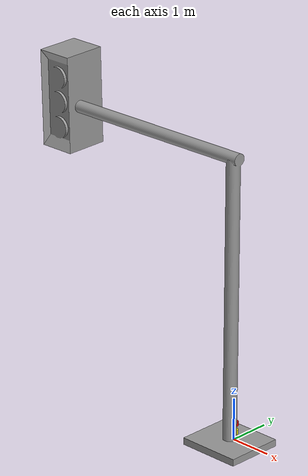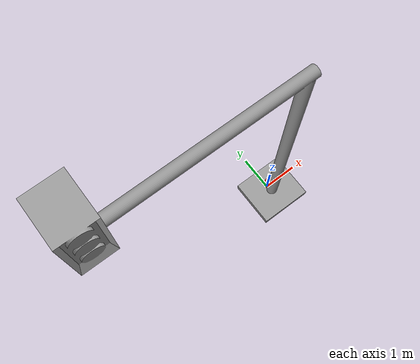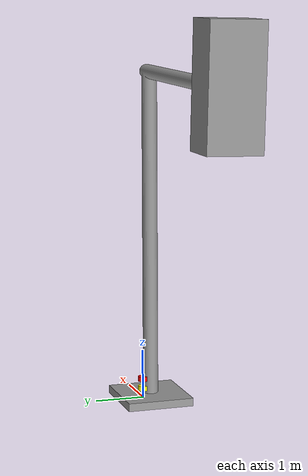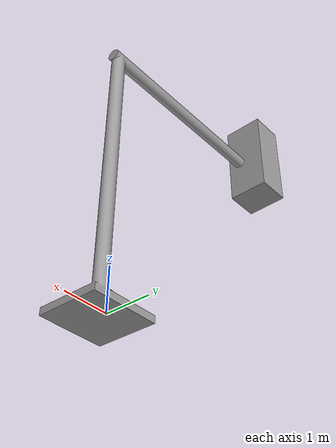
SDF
<?xml version='1.0'?>
<sdf version='1.7'>
  <model name='trafficLight'>
    <link name='link_3'>
      <inertial>
        <mass>1</mass>
        <inertia>
          <ixx>0.166667</ixx>
          <ixy>0</ixy>
          <ixz>0</ixz>
          <iyy>0.166667</iyy>
          <iyz>0</iyz>
          <izz>0.166667</izz>
        </inertia>
      </inertial>
      <pose>0.036159 -0.173654 -0.062466 1.56838 -0 0</pose>
      <visual name='visual'>
        <pose>0 0 0 0 -0 0</pose>
        <geometry>
          <mesh>
            <uri>model://traffic_light_parts/meshes/lightStand.obj</uri>
            <scale>0.75 0.75 0.75</scale>
          </mesh>
        </geometry>
        <material>
          <lighting>1</lighting>
          <script>
            <uri>file://media/materials/scripts/gazebo.material</uri>
            <name>Gazebo/Grey</name>
          </script>
          <shader type='pixel'/>
          <emissive>0 0 0 1</emissive>
        </material>
        <transparency>0</transparency>
        <cast_shadows>1</cast_shadows>
      </visual>
      <collision name='collision'>
        <laser_retro>0</laser_retro>
        <max_contacts>10</max_contacts>
        <pose>0 0 0 0 -0 0</pose>
        <geometry>
          <mesh>
            <uri>model://traffic_light_parts/meshes/lightStand.obj</uri>
            <scale>0.75 0.75 0.75</scale>
          </mesh>
        </geometry>
        <surface>
          <friction>
            <ode>
              <mu>1</mu>
              <mu2>1</mu2>
              <fdir1>0 0 0</fdir1>
              <slip1>0</slip1>
              <slip2>0</slip2>
            </ode>
            <torsional>
              <coefficient>1</coefficient>
              <patch_radius>0</patch_radius>
              <surface_radius>0</surface_radius>
              <use_patch_radius>1</use_patch_radius>
              <ode>
                <slip>0</slip>
              </ode>
            </torsional>
          </friction>
          <bounce>
            <restitution_coefficient>0</restitution_coefficient>
            <threshold>1e+06</threshold>
          </bounce>
          <contact>
            <collide_without_contact>0</collide_without_contact>
            <collide_without_contact_bitmask>1</collide_without_contact_bitmask>
            <collide_bitmask>1</collide_bitmask>
            <ode>
              <soft_cfm>0</soft_cfm>
              <soft_erp>0.2</soft_erp>
              <kp>1e+13</kp>
              <kd>1</kd>
              <max_vel>0.01</max_vel>
              <min_depth>0</min_depth>
            </ode>
            <bullet>
              <split_impulse>1</split_impulse>
              <split_impulse_penetration_threshold>-0.01</split_impulse_penetration_threshold>
              <soft_cfm>0</soft_cfm>
              <soft_erp>0.2</soft_erp>
              <kp>1e+13</kp>
              <kd>1</kd>
            </bullet>
          </contact>
        </surface>
      </collision>
    </link>
    <link name='link_4'>
      <inertial>
        <mass>1</mass>
        <inertia>
          <ixx>0.166667</ixx>
          <ixy>0</ixy>
          <ixz>0</ixz>
          <iyy>0.166667</iyy>
          <iyz>0</iyz>
          <izz>0.166667</izz>
        </inertia>
      </inertial>
      <pose>-0.03616 0.173654 0.062465 1.59454 -0 0</pose>
      <visual name='visual'>
        <pose>0 0 0 0 -0 0</pose>
        <geometry>
          <mesh>
            <uri>model://traffic_light_parts/meshes/lightBox.obj</uri>
            <scale>0.75 0.75 0.75</scale>
          </mesh>
        </geometry>
        <material>
          <lighting>1</lighting>
          <script>
            <uri>file://media/materials/scripts/gazebo.material</uri>
            <name>Gazebo/Grey</name>
          </script>
          <shader type='pixel'/>
          <emissive>0 0 0 1</emissive>
        </material>
        <transparency>0</transparency>
        <cast_shadows>1</cast_shadows>
      </visual>
      <collision name='collision'>
        <laser_retro>0</laser_retro>
        <max_contacts>10</max_contacts>
        <pose>0 0 0 0 -0 0</pose>
        <geometry>
          <mesh>
            <uri>model://traffic_light_parts/meshes/lightBox.obj</uri>
            <scale>0.75 0.75 0.75</scale>
          </mesh>
        </geometry>
        <surface>
          <friction>
            <ode>
              <mu>1</mu>
              <mu2>1</mu2>
              <fdir1>0 0 0</fdir1>
              <slip1>0</slip1>
              <slip2>0</slip2>
            </ode>
            <torsional>
              <coefficient>1</coefficient>
              <patch_radius>0</patch_radius>
              <surface_radius>0</surface_radius>
              <use_patch_radius>1</use_patch_radius>
              <ode>
                <slip>0</slip>
              </ode>
            </torsional>
          </friction>
          <bounce>
            <restitution_coefficient>0</restitution_coefficient>
            <threshold>1e+06</threshold>
          </bounce>
          <contact>
            <collide_without_contact>0</collide_without_contact>
            <collide_without_contact_bitmask>1</collide_without_contact_bitmask>
            <collide_bitmask>1</collide_bitmask>
            <ode>
              <soft_cfm>0</soft_cfm>
              <soft_erp>0.2</soft_erp>
              <kp>1e+13</kp>
              <kd>1</kd>
              <max_vel>0.01</max_vel>
              <min_depth>0</min_depth>
            </ode>
            <bullet>
              <split_impulse>1</split_impulse>
              <split_impulse_penetration_threshold>-0.01</split_impulse_penetration_threshold>
              <soft_cfm>0</soft_cfm>
              <soft_erp>0.2</soft_erp>
              <kp>1e+13</kp>
              <kd>1</kd>
            </bullet>
          </contact>
        </surface>
      </collision>
    </link>
    <joint name='link_3_JOINT_1' type='fixed'>
      <parent>link_3</parent>
      <child>link_4</child>
      <pose>0 0 0 0 -0 0</pose>
      <physics>
        <ode>
          <limit>
            <cfm>0</cfm>
            <erp>0.2</erp>
          </limit>
          <suspension>
            <cfm>0</cfm>
            <erp>0.2</erp>
          </suspension>
        </ode>
      </physics>
    </joint>

    <include>
      <uri>model://redLight</uri>
      <pose>0 0 0.4 0 0 0</pose>
      <name>red_light</name>
    </include>

    <include>
      <uri>model://yellowLight</uri>
      <pose>0 0 0.2 0 0 0</pose>
      <name>yellow_light</name>
    </include>

    <include>
      <uri>model://greenLight</uri>
      <pose>0 0 0 0 0 0</pose>
      <name>green_light</name>
    </include>

    <static>1</static>
    <allow_auto_disable>1</allow_auto_disable>
  </model>
</sdf>

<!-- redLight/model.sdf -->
<sdf version="1.6">
  <model name="redLight">
    <static>true</static>
    <link name="link">
      <collision name="collision">
        <geometry>
          <cylinder>
            <radius>0.1</radius>
            <length>0.1</length>
          </cylinder>
        </geometry>
      </collision>
      <visual name="visual">
        <geometry>
          <cylinder>
            <radius>0.1</radius>
            <length>0.1</length>
          </cylinder>
        </geometry>
        <material>
          <ambient>1 0 0 1</ambient>
          <diffuse>1 0 0 1</diffuse>
          <specular>1 0 0 1</specular>
          <emissive>1 0 0 1</emissive>
        </material>
      </visual>
    </link>
    <plugin name="redlight_ros" filename="libgazebo_ros_state.so">
      <ros>
        <namespace>/traffic_light</namespace>
        <remapping>model_state:=red_light_state</remapping>
      </ros>
      <update_rate>10</update_rate>
    </plugin>
  </model>
</sdf>

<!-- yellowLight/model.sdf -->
<sdf version="1.6">
  <model name="yellowLight">
    <static>true</static>
    <link name="link">
      <collision name="collision">
        <geometry>
          <cylinder>
            <radius>0.1</radius>
            <length>0.1</length>
          </cylinder>
        </geometry>
      </collision>
      <visual name="visual">
        <geometry>
          <cylinder>
            <radius>0.1</radius>
            <length>0.1</length>
          </cylinder>
        </geometry>
        <material>
          <ambient>1 1 0 1</ambient>
          <diffuse>1 1 0 1</diffuse>
          <specular>1 1 0 1</specular>
          <emissive>1 1 0 1</emissive>
        </material>
      </visual>
    </link>
    <plugin name="yellowlight_ros" filename="libgazebo_ros_state.so">
      <ros>
        <namespace>/traffic_light</namespace>
        <remapping>model_state:=yellow_light_state</remapping>
      </ros>
      <update_rate>10</update_rate>
    </plugin>
  </model>
</sdf>

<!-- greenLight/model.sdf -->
<sdf version="1.6">
  <model name="greenLight">
    <static>true</static>
    <link name="link">
      <collision name="collision">
        <geometry>
          <cylinder>
            <radius>0.1</radius>
            <length>0.1</length>
          </cylinder>
        </geometry>
      </collision>
      <visual name="visual">
        <geometry>
          <cylinder>
            <radius>0.1</radius>
            <length>0.1</length>
          </cylinder>
        </geometry>
        <material>
          <ambient>0 1 0 1</ambient>
          <diffuse>0 1 0 1</diffuse>
          <specular>0 1 0 1</specular>
          <emissive>0 1 0 1</emissive>
        </material>
      </visual>
    </link>
    <plugin name="greenlight_ros" filename="libgazebo_ros_state.so">
      <ros>
        <namespace>/traffic_light</namespace>
        <remapping>model_state:=green_light_state</remapping>
      </ros>
      <update_rate>10</update_rate>
    </plugin>
  </model>
</sdf>
